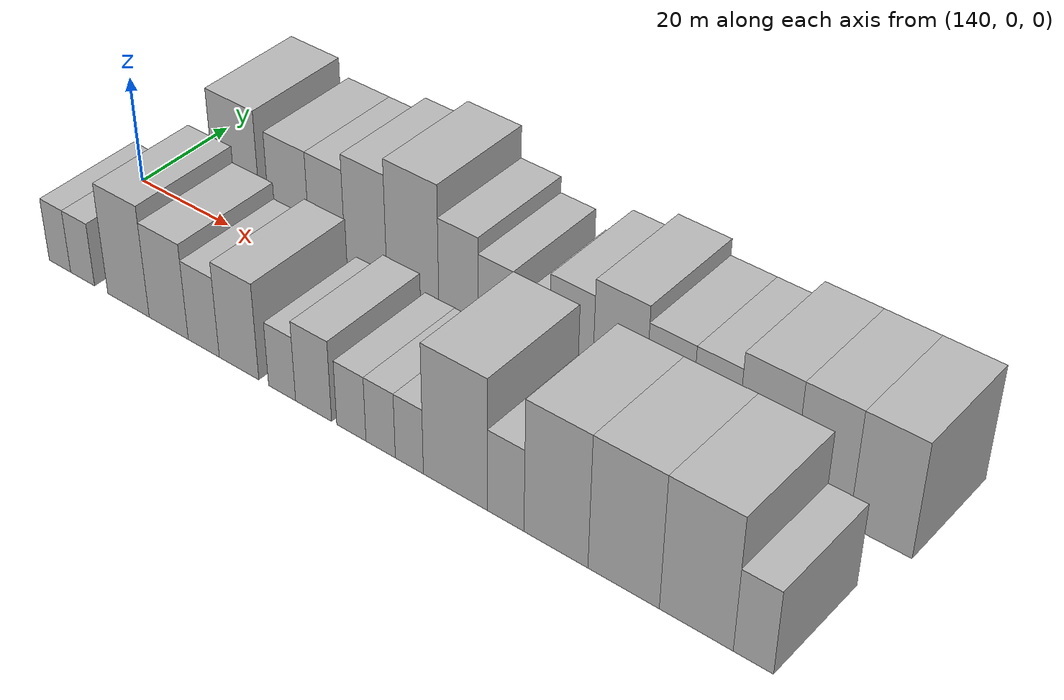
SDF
<sdf version="1.6">
 <world name="default">
  <model name="building_15">
   <static>1</static>
   <pose>157.6557 14.5000 0 0.000000 0.000000 1.570796</pose>
   <link name="link">
    <pose>0 0 10.50 0 0 0</pose>
    <collision name="collision"><geometry><box><size>20.0000 10.4486 21.0000</size></box></geometry></collision>
    <visual name="visual">
     <cast_shadows>0</cast_shadows>
     <geometry><box><size>20.0000 10.4486 21.0000</size></box></geometry>
     <material>
      <script>
       <uri>model://HANNAS_wall/materials/scripts</uri>
       <uri>model://HANNAS_wall/materials/textures</uri>
       <name>vrc/HANNAS_wall</name>
      </script>
     </material>
    </visual>
   </link>
  </model>
  <model name="building_16">
   <static>1</static>
   <pose>169.2767 14.5000 0 0.000000 0.000000 1.570796</pose>
   <link name="link">
    <pose>0 0 9.00 0 0 0</pose>
    <collision name="collision"><geometry><box><size>20.0000 8.7935 18.0000</size></box></geometry></collision>
    <visual name="visual">
     <cast_shadows>0</cast_shadows>
     <geometry><box><size>20.0000 8.7935 18.0000</size></box></geometry>
     <material>
      <script>
       <uri>model://HANNAS_wall/materials/scripts</uri>
       <uri>model://HANNAS_wall/materials/textures</uri>
       <name>vrc/HANNAS_wall</name>
      </script>
     </material>
    </visual>
   </link>
  </model>
  <model name="building_17">
   <static>1</static>
   <pose>177.5255 14.5000 0 0.000000 0.000000 1.570796</pose>
   <link name="link">
    <pose>0 0 9.00 0 0 0</pose>
    <collision name="collision"><geometry><box><size>20.0000 7.7040 18.0000</size></box></geometry></collision>
    <visual name="visual">
     <cast_shadows>0</cast_shadows>
     <geometry><box><size>20.0000 7.7040 18.0000</size></box></geometry>
     <material>
      <script>
       <uri>model://HANNAS_wall/materials/scripts</uri>
       <uri>model://HANNAS_wall/materials/textures</uri>
       <name>vrc/HANNAS_wall</name>
      </script>
     </material>
    </visual>
   </link>
  </model>
  <model name="building_18">
   <static>1</static>
   <pose>185.7374 14.5000 0 0.000000 0.000000 1.570796</pose>
   <link name="link">
    <pose>0 0 10.50 0 0 0</pose>
    <collision name="collision"><geometry><box><size>20.0000 8.7199 21.0000</size></box></geometry></collision>
    <visual name="visual">
     <cast_shadows>0</cast_shadows>
     <geometry><box><size>20.0000 8.7199 21.0000</size></box></geometry>
     <material>
      <script>
       <uri>model://HANNAS_wall/materials/scripts</uri>
       <uri>model://HANNAS_wall/materials/textures</uri>
       <name>vrc/HANNAS_wall</name>
      </script>
     </material>
    </visual>
   </link>
  </model>
  <model name="building_19">
   <static>1</static>
   <pose>195.3973 14.5000 0 0.000000 0.000000 1.570796</pose>
   <link name="link">
    <pose>0 0 12.00 0 0 0</pose>
    <collision name="collision"><geometry><box><size>20.0000 10.5998 24.0000</size></box></geometry></collision>
    <visual name="visual">
     <cast_shadows>0</cast_shadows>
     <geometry><box><size>20.0000 10.5998 24.0000</size></box></geometry>
     <material>
      <script>
       <uri>model://HANNAS_wall/materials/scripts</uri>
       <uri>model://HANNAS_wall/materials/textures</uri>
       <name>vrc/HANNAS_wall</name>
      </script>
     </material>
    </visual>
   </link>
  </model>
  <model name="building_20">
   <static>1</static>
   <pose>204.5930 14.5000 0 0.000000 0.000000 1.570796</pose>
   <link name="link">
    <pose>0 0 9.00 0 0 0</pose>
    <collision name="collision"><geometry><box><size>20.0000 7.7916 18.0000</size></box></geometry></collision>
    <visual name="visual">
     <cast_shadows>0</cast_shadows>
     <geometry><box><size>20.0000 7.7916 18.0000</size></box></geometry>
     <material>
      <script>
       <uri>model://HANNAS_wall/materials/scripts</uri>
       <uri>model://HANNAS_wall/materials/textures</uri>
       <name>vrc/HANNAS_wall</name>
      </script>
     </material>
    </visual>
   </link>
  </model>
  <model name="building_21">
   <static>1</static>
   <pose>211.8534 14.5000 0 0.000000 0.000000 1.570796</pose>
   <link name="link">
    <pose>0 0 7.50 0 0 0</pose>
    <collision name="collision"><geometry><box><size>20.0000 6.7293 15.0000</size></box></geometry></collision>
    <visual name="visual">
     <cast_shadows>0</cast_shadows>
     <geometry><box><size>20.0000 6.7293 15.0000</size></box></geometry>
     <material>
      <script>
       <uri>model://HANNAS_wall/materials/scripts</uri>
       <uri>model://HANNAS_wall/materials/textures</uri>
       <name>vrc/HANNAS_wall</name>
      </script>
     </material>
    </visual>
   </link>
  </model>
  <model name="building_22">
   <static>1</static>
   <pose>219.6407 14.5000 0 0.000000 0.000000 1.570796</pose>
   <link name="link">
    <pose>0 0 6.00 0 0 0</pose>
    <collision name="collision"><geometry><box><size>20.0000 4.8453 12.0000</size></box></geometry></collision>
    <visual name="visual">
     <cast_shadows>0</cast_shadows>
     <geometry><box><size>20.0000 4.8453 12.0000</size></box></geometry>
     <material>
      <script>
       <uri>model://HANNAS_wall/materials/scripts</uri>
       <uri>model://HANNAS_wall/materials/textures</uri>
       <name>vrc/HANNAS_wall</name>
      </script>
     </material>
    </visual>
   </link>
  </model>
  <model name="building_23">
   <static>1</static>
   <pose>226.0874 14.5000 0 0.000000 0.000000 1.570796</pose>
   <link name="link">
    <pose>0 0 9.00 0 0 0</pose>
    <collision name="collision"><geometry><box><size>20.0000 8.0481 18.0000</size></box></geometry></collision>
    <visual name="visual">
     <cast_shadows>0</cast_shadows>
     <geometry><box><size>20.0000 8.0481 18.0000</size></box></geometry>
     <material>
      <script>
       <uri>model://HANNAS_wall/materials/scripts</uri>
       <uri>model://HANNAS_wall/materials/textures</uri>
       <name>vrc/HANNAS_wall</name>
      </script>
     </material>
    </visual>
   </link>
  </model>
  <model name="building_24">
   <static>1</static>
   <pose>234.8667 14.5000 0 0.000000 0.000000 1.570796</pose>
   <link name="link">
    <pose>0 0 10.50 0 0 0</pose>
    <collision name="collision"><geometry><box><size>20.0000 9.5105 21.0000</size></box></geometry></collision>
    <visual name="visual">
     <cast_shadows>0</cast_shadows>
     <geometry><box><size>20.0000 9.5105 21.0000</size></box></geometry>
     <material>
      <script>
       <uri>model://HANNAS_wall/materials/scripts</uri>
       <uri>model://HANNAS_wall/materials/textures</uri>
       <name>vrc/HANNAS_wall</name>
      </script>
     </material>
    </visual>
   </link>
  </model>
  <model name="building_25">
   <static>1</static>
   <pose>243.6418 14.5000 0 0.000000 0.000000 1.570796</pose>
   <link name="link">
    <pose>0 0 9.00 0 0 0</pose>
    <collision name="collision"><geometry><box><size>20.0000 8.0398 18.0000</size></box></geometry></collision>
    <visual name="visual">
     <cast_shadows>0</cast_shadows>
     <geometry><box><size>20.0000 8.0398 18.0000</size></box></geometry>
     <material>
      <script>
       <uri>model://HANNAS_wall/materials/scripts</uri>
       <uri>model://HANNAS_wall/materials/textures</uri>
       <name>vrc/HANNAS_wall</name>
      </script>
     </material>
    </visual>
   </link>
  </model>
  <model name="building_26">
   <static>1</static>
   <pose>251.5086 14.5000 0 0.000000 0.000000 1.570796</pose>
   <link name="link">
    <pose>0 0 9.00 0 0 0</pose>
    <collision name="collision"><geometry><box><size>20.0000 7.6938 18.0000</size></box></geometry></collision>
    <visual name="visual">
     <cast_shadows>0</cast_shadows>
     <geometry><box><size>20.0000 7.6938 18.0000</size></box></geometry>
     <material>
      <script>
       <uri>model://HANNAS_wall/materials/scripts</uri>
       <uri>model://HANNAS_wall/materials/textures</uri>
       <name>vrc/HANNAS_wall</name>
      </script>
     </material>
    </visual>
   </link>
  </model>
  <model name="building_27">
   <static>1</static>
   <pose>260.1843 14.5000 0 0.000000 0.000000 1.570796</pose>
   <link name="link">
    <pose>0 0 10.50 0 0 0</pose>
    <collision name="collision"><geometry><box><size>20.0000 9.6576 21.0000</size></box></geometry></collision>
    <visual name="visual">
     <cast_shadows>0</cast_shadows>
     <geometry><box><size>20.0000 9.6576 21.0000</size></box></geometry>
     <material>
      <script>
       <uri>model://HANNAS_wall/materials/scripts</uri>
       <uri>model://HANNAS_wall/materials/textures</uri>
       <name>vrc/HANNAS_wall</name>
      </script>
     </material>
    </visual>
   </link>
  </model>
  <model name="building_28">
   <static>1</static>
   <pose>269.6233 14.5000 0 0.000000 0.000000 1.570796</pose>
   <link name="link">
    <pose>0 0 10.50 0 0 0</pose>
    <collision name="collision"><geometry><box><size>20.0000 9.2205 21.0000</size></box></geometry></collision>
    <visual name="visual">
     <cast_shadows>0</cast_shadows>
     <geometry><box><size>20.0000 9.2205 21.0000</size></box></geometry>
     <material>
      <script>
       <uri>model://HANNAS_wall/materials/scripts</uri>
       <uri>model://HANNAS_wall/materials/textures</uri>
       <name>vrc/HANNAS_wall</name>
      </script>
     </material>
    </visual>
   </link>
  </model>
  <model name="building_29">
   <static>1</static>
   <pose>279.1970 14.5000 0 0.000000 0.000000 1.570796</pose>
   <link name="link">
    <pose>0 0 10.50 0 0 0</pose>
    <collision name="collision"><geometry><box><size>20.0000 9.9270 21.0000</size></box></geometry></collision>
    <visual name="visual">
     <cast_shadows>0</cast_shadows>
     <geometry><box><size>20.0000 9.9270 21.0000</size></box></geometry>
     <material>
      <script>
       <uri>model://HANNAS_wall/materials/scripts</uri>
       <uri>model://HANNAS_wall/materials/textures</uri>
       <name>vrc/HANNAS_wall</name>
      </script>
     </material>
    </visual>
   </link>
  </model>
  <model name="building_45">
   <static>1</static>
   <pose>146.8978 -14.5000 0 0.000000 0.000000 1.570796</pose>
   <link name="link">
    <pose>0 0 6.00 0 0 0</pose>
    <collision name="collision"><geometry><box><size>20.0000 4.9773 12.0000</size></box></geometry></collision>
    <visual name="visual">
     <cast_shadows>0</cast_shadows>
     <geometry><box><size>20.0000 4.9773 12.0000</size></box></geometry>
     <material>
      <script>
       <uri>model://HANNAS_wall/materials/scripts</uri>
       <uri>model://HANNAS_wall/materials/textures</uri>
       <name>vrc/HANNAS_wall</name>
      </script>
     </material>
    </visual>
   </link>
  </model>
  <model name="building_46">
   <static>1</static>
   <pose>152.1326 -14.5000 0 0.000000 0.000000 1.570796</pose>
   <link name="link">
    <pose>0 0 6.00 0 0 0</pose>
    <collision name="collision"><geometry><box><size>20.0000 5.4925 12.0000</size></box></geometry></collision>
    <visual name="visual">
     <cast_shadows>0</cast_shadows>
     <geometry><box><size>20.0000 5.4925 12.0000</size></box></geometry>
     <material>
      <script>
       <uri>model://HANNAS_wall/materials/scripts</uri>
       <uri>model://HANNAS_wall/materials/textures</uri>
       <name>vrc/HANNAS_wall</name>
      </script>
     </material>
    </visual>
   </link>
  </model>
  <model name="building_47">
   <static>1</static>
   <pose>162.4868 -14.5000 0 0.000000 0.000000 1.570796</pose>
   <link name="link">
    <pose>0 0 10.50 0 0 0</pose>
    <collision name="collision"><geometry><box><size>20.0000 9.2159 21.0000</size></box></geometry></collision>
    <visual name="visual">
     <cast_shadows>0</cast_shadows>
     <geometry><box><size>20.0000 9.2159 21.0000</size></box></geometry>
     <material>
      <script>
       <uri>model://HANNAS_wall/materials/scripts</uri>
       <uri>model://HANNAS_wall/materials/textures</uri>
       <name>vrc/HANNAS_wall</name>
      </script>
     </material>
    </visual>
   </link>
  </model>
  <model name="building_48">
   <static>1</static>
   <pose>171.3334 -14.5000 0 0.000000 0.000000 1.570796</pose>
   <link name="link">
    <pose>0 0 9.00 0 0 0</pose>
    <collision name="collision"><geometry><box><size>20.0000 8.4772 18.0000</size></box></geometry></collision>
    <visual name="visual">
     <cast_shadows>0</cast_shadows>
     <geometry><box><size>20.0000 8.4772 18.0000</size></box></geometry>
     <material>
      <script>
       <uri>model://HANNAS_wall/materials/scripts</uri>
       <uri>model://HANNAS_wall/materials/textures</uri>
       <name>vrc/HANNAS_wall</name>
      </script>
     </material>
    </visual>
   </link>
  </model>
  <model name="building_49">
   <static>1</static>
   <pose>178.8638 -14.5000 0 0.000000 0.000000 1.570796</pose>
   <link name="link">
    <pose>0 0 7.50 0 0 0</pose>
    <collision name="collision"><geometry><box><size>20.0000 6.5837 15.0000</size></box></geometry></collision>
    <visual name="visual">
     <cast_shadows>0</cast_shadows>
     <geometry><box><size>20.0000 6.5837 15.0000</size></box></geometry>
     <material>
      <script>
       <uri>model://HANNAS_wall/materials/scripts</uri>
       <uri>model://HANNAS_wall/materials/textures</uri>
       <name>vrc/HANNAS_wall</name>
      </script>
     </material>
    </visual>
   </link>
  </model>
  <model name="building_50">
   <static>1</static>
   <pose>186.2467 -14.5000 0 0.000000 0.000000 1.570796</pose>
   <link name="link">
    <pose>0 0 9.00 0 0 0</pose>
    <collision name="collision"><geometry><box><size>20.0000 8.1821 18.0000</size></box></geometry></collision>
    <visual name="visual">
     <cast_shadows>0</cast_shadows>
     <geometry><box><size>20.0000 8.1821 18.0000</size></box></geometry>
     <material>
      <script>
       <uri>model://HANNAS_wall/materials/scripts</uri>
       <uri>model://HANNAS_wall/materials/textures</uri>
       <name>vrc/HANNAS_wall</name>
      </script>
     </material>
    </visual>
   </link>
  </model>
  <model name="building_51">
   <static>1</static>
   <pose>195.0648 -14.5000 0 0.000000 0.000000 1.570796</pose>
   <link name="link">
    <pose>0 0 6.00 0 0 0</pose>
    <collision name="collision"><geometry><box><size>20.0000 5.4539 12.0000</size></box></geometry></collision>
    <visual name="visual">
     <cast_shadows>0</cast_shadows>
     <geometry><box><size>20.0000 5.4539 12.0000</size></box></geometry>
     <material>
      <script>
       <uri>model://HANNAS_wall/materials/scripts</uri>
       <uri>model://HANNAS_wall/materials/textures</uri>
       <name>vrc/HANNAS_wall</name>
      </script>
     </material>
    </visual>
   </link>
  </model>
  <model name="building_52">
   <static>1</static>
   <pose>201.3496 -14.5000 0 0.000000 0.000000 1.570796</pose>
   <link name="link">
    <pose>0 0 7.50 0 0 0</pose>
    <collision name="collision"><geometry><box><size>20.0000 7.1158 15.0000</size></box></geometry></collision>
    <visual name="visual">
     <cast_shadows>0</cast_shadows>
     <geometry><box><size>20.0000 7.1158 15.0000</size></box></geometry>
     <material>
      <script>
       <uri>model://HANNAS_wall/materials/scripts</uri>
       <uri>model://HANNAS_wall/materials/textures</uri>
       <name>vrc/HANNAS_wall</name>
      </script>
     </material>
    </visual>
   </link>
  </model>
  <model name="building_53">
   <static>1</static>
   <pose>208.7354 -14.5000 0 0.000000 0.000000 1.570796</pose>
   <link name="link">
    <pose>0 0 6.00 0 0 0</pose>
    <collision name="collision"><geometry><box><size>20.0000 5.6559 12.0000</size></box></geometry></collision>
    <visual name="visual">
     <cast_shadows>0</cast_shadows>
     <geometry><box><size>20.0000 5.6559 12.0000</size></box></geometry>
     <material>
      <script>
       <uri>model://HANNAS_wall/materials/scripts</uri>
       <uri>model://HANNAS_wall/materials/textures</uri>
       <name>vrc/HANNAS_wall</name>
      </script>
     </material>
    </visual>
   </link>
  </model>
  <model name="building_54">
   <static>1</static>
   <pose>214.3483 -14.5000 0 0.000000 0.000000 1.570796</pose>
   <link name="link">
    <pose>0 0 6.00 0 0 0</pose>
    <collision name="collision"><geometry><box><size>20.0000 5.5699 12.0000</size></box></geometry></collision>
    <visual name="visual">
     <cast_shadows>0</cast_shadows>
     <geometry><box><size>20.0000 5.5699 12.0000</size></box></geometry>
     <material>
      <script>
       <uri>model://HANNAS_wall/materials/scripts</uri>
       <uri>model://HANNAS_wall/materials/textures</uri>
       <name>vrc/HANNAS_wall</name>
      </script>
     </material>
    </visual>
   </link>
  </model>
  <model name="building_55">
   <static>1</static>
   <pose>219.7541 -14.5000 0 0.000000 0.000000 1.570796</pose>
   <link name="link">
    <pose>0 0 6.00 0 0 0</pose>
    <collision name="collision"><geometry><box><size>20.0000 5.2416 12.0000</size></box></geometry></collision>
    <visual name="visual">
     <cast_shadows>0</cast_shadows>
     <geometry><box><size>20.0000 5.2416 12.0000</size></box></geometry>
     <material>
      <script>
       <uri>model://HANNAS_wall/materials/scripts</uri>
       <uri>model://HANNAS_wall/materials/textures</uri>
       <name>vrc/HANNAS_wall</name>
      </script>
     </material>
    </visual>
   </link>
  </model>
  <model name="building_56">
   <static>1</static>
   <pose>228.1982 -14.5000 0 0.000000 0.000000 1.570796</pose>
   <link name="link">
    <pose>0 0 12.00 0 0 0</pose>
    <collision name="collision"><geometry><box><size>20.0000 11.6465 24.0000</size></box></geometry></collision>
    <visual name="visual">
     <cast_shadows>0</cast_shadows>
     <geometry><box><size>20.0000 11.6465 24.0000</size></box></geometry>
     <material>
      <script>
       <uri>model://HANNAS_wall/materials/scripts</uri>
       <uri>model://HANNAS_wall/materials/textures</uri>
       <name>vrc/HANNAS_wall</name>
      </script>
     </material>
    </visual>
   </link>
  </model>
  <model name="building_57">
   <static>1</static>
   <pose>237.2211 -14.5000 0 0.000000 0.000000 1.570796</pose>
   <link name="link">
    <pose>0 0 7.50 0 0 0</pose>
    <collision name="collision"><geometry><box><size>20.0000 6.3994 15.0000</size></box></geometry></collision>
    <visual name="visual">
     <cast_shadows>0</cast_shadows>
     <geometry><box><size>20.0000 6.3994 15.0000</size></box></geometry>
     <material>
      <script>
       <uri>model://HANNAS_wall/materials/scripts</uri>
       <uri>model://HANNAS_wall/materials/textures</uri>
       <name>vrc/HANNAS_wall</name>
      </script>
     </material>
    </visual>
   </link>
  </model>
  <model name="building_58">
   <static>1</static>
   <pose>245.8995 -14.5000 0 0.000000 0.000000 1.570796</pose>
   <link name="link">
    <pose>0 0 12.00 0 0 0</pose>
    <collision name="collision"><geometry><box><size>20.0000 10.9574 24.0000</size></box></geometry></collision>
    <visual name="visual">
     <cast_shadows>0</cast_shadows>
     <geometry><box><size>20.0000 10.9574 24.0000</size></box></geometry>
     <material>
      <script>
       <uri>model://HANNAS_wall/materials/scripts</uri>
       <uri>model://HANNAS_wall/materials/textures</uri>
       <name>vrc/HANNAS_wall</name>
      </script>
     </material>
    </visual>
   </link>
  </model>
  <model name="building_59">
   <static>1</static>
   <pose>257.2626 -14.5000 0 0.000000 0.000000 1.570796</pose>
   <link name="link">
    <pose>0 0 12.00 0 0 0</pose>
    <collision name="collision"><geometry><box><size>20.0000 11.7687 24.0000</size></box></geometry></collision>
    <visual name="visual">
     <cast_shadows>0</cast_shadows>
     <geometry><box><size>20.0000 11.7687 24.0000</size></box></geometry>
     <material>
      <script>
       <uri>model://HANNAS_wall/materials/scripts</uri>
       <uri>model://HANNAS_wall/materials/textures</uri>
       <name>vrc/HANNAS_wall</name>
      </script>
     </material>
    </visual>
   </link>
  </model>
  <model name="building_60">
   <static>1</static>
   <pose>268.9939 -14.5000 0 0.000000 0.000000 1.570796</pose>
   <link name="link">
    <pose>0 0 12.00 0 0 0</pose>
    <collision name="collision"><geometry><box><size>20.0000 11.6939 24.0000</size></box></geometry></collision>
    <visual name="visual">
     <cast_shadows>0</cast_shadows>
     <geometry><box><size>20.0000 11.6939 24.0000</size></box></geometry>
     <material>
      <script>
       <uri>model://HANNAS_wall/materials/scripts</uri>
       <uri>model://HANNAS_wall/materials/textures</uri>
       <name>vrc/HANNAS_wall</name>
      </script>
     </material>
    </visual>
   </link>
  </model>
  <model name="building_61">
   <static>1</static>
   <pose>277.9362 -14.5000 0 0.000000 0.000000 1.570796</pose>
   <link name="link">
    <pose>0 0 7.50 0 0 0</pose>
    <collision name="collision"><geometry><box><size>20.0000 6.1907 15.0000</size></box></geometry></collision>
    <visual name="visual">
     <cast_shadows>0</cast_shadows>
     <geometry><box><size>20.0000 6.1907 15.0000</size></box></geometry>
     <material>
      <script>
       <uri>model://HANNAS_wall/materials/scripts</uri>
       <uri>model://HANNAS_wall/materials/textures</uri>
       <name>vrc/HANNAS_wall</name>
      </script>
     </material>
    </visual>
   </link>
  </model>
 </world>
</sdf>
